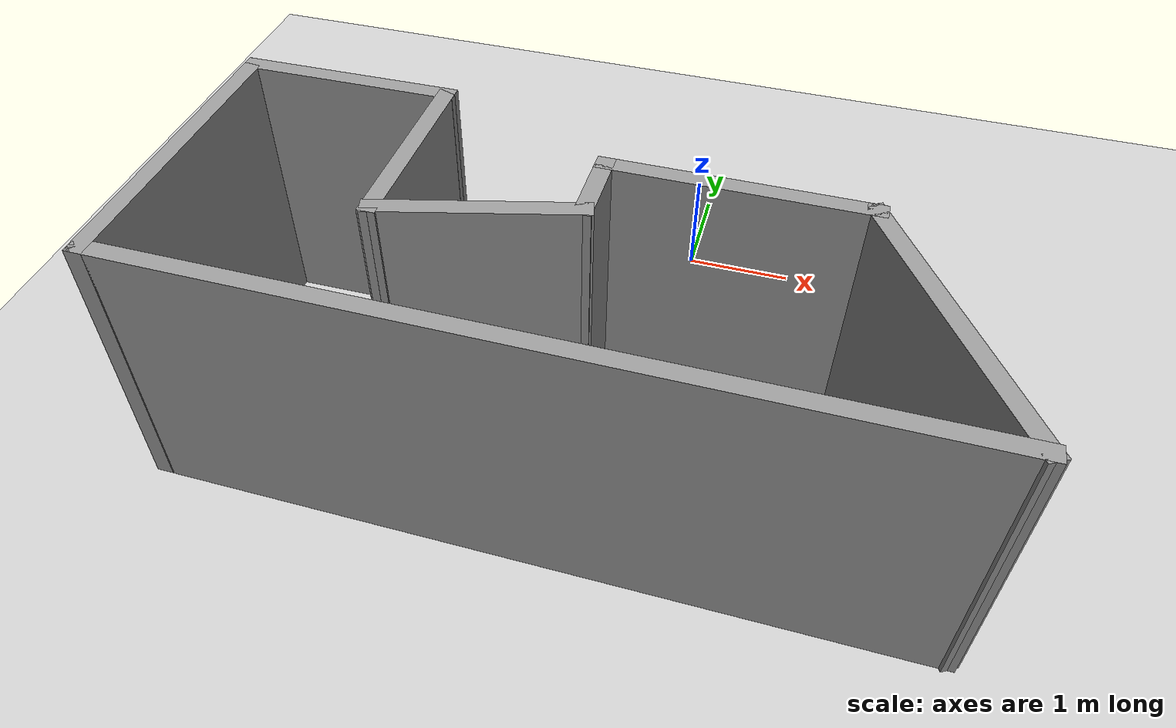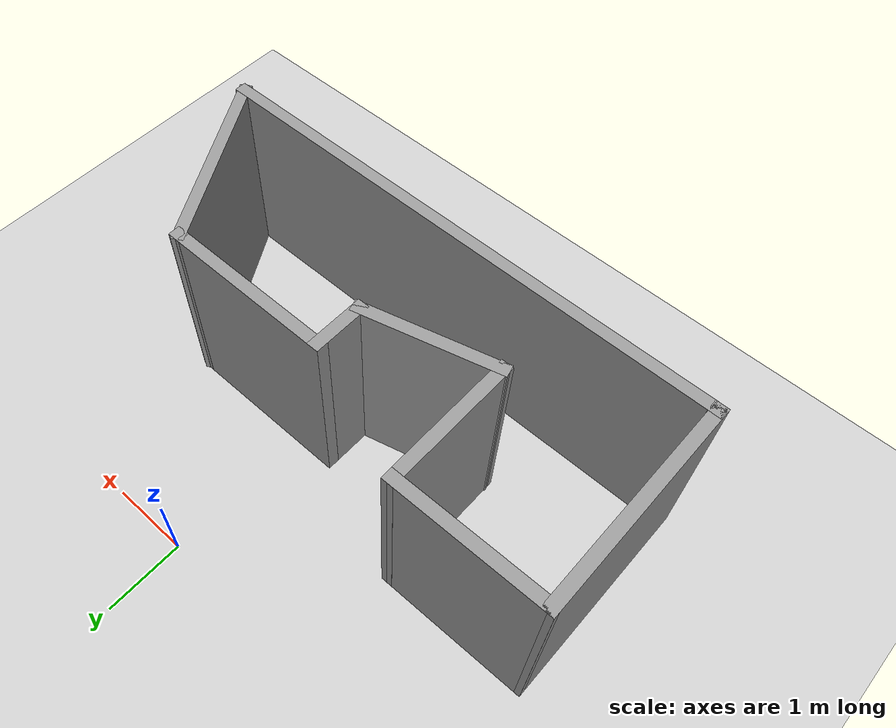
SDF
<sdf version='1.4'>
  <world name='default'>
    <!-- A global light source -->
    <include>
      <uri>model://sun</uri>
    </include>

    <!-- A ground plane -->
    <include>
      <uri>model://ground_plane</uri>
    </include>

    <physics type="ode">
      <real_time_update_rate>1000.0</real_time_update_rate>
      <max_step_size>0.001</max_step_size>
      <real_time_factor>1</real_time_factor>
      <ode>
        <solver>
          <type>quick</type>
          <iters>150</iters>
          <precon_iters>0</precon_iters>
          <sor>1.400000</sor>
          <use_dynamic_moi_rescaling>1</use_dynamic_moi_rescaling>
        </solver>
        <constraints>
          <cfm>0.00001</cfm>
          <erp>0.2</erp>
          <contact_max_correcting_vel>2000.000000</contact_max_correcting_vel>
          <contact_surface_layer>0.01000</contact_surface_layer>
        </constraints>
      </ode>
    </physics>

    <!-- Load world -->
    <include>
      <uri>model://new_home</uri>
    </include>

    <scene>
      <ambient>0.4 0.4 0.4 1</ambient>
      <background>0.7 0.7 0.7 1</background>
      <shadows>true</shadows>
    </scene>

    <gui fullscreen='0'>
      <camera name='user_camera'>
        <pose>0.8 0.0 12.0 0 1.5708 0</pose>
        <view_controller>orbit</view_controller>
      </camera>
    </gui>
  </world>
</sdf>

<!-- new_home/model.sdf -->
<sdf version='1.7'>
  <model name='new_home_workshop'>
    <pose>-0.52171 -2.05123 0 0 -0 0</pose>
    <link name='Wall_0'>
      <collision name='Wall_0_Collision'>
        <geometry>
          <box>
            <size>2.75 0.15 2.5</size>
          </box>
        </geometry>
        <pose>0 0 1.25 0 -0 0</pose>
      </collision>
      <visual name='Wall_0_Visual'>
        <pose>0 0 1.25 0 -0 0</pose>
        <geometry>
          <box>
            <size>2.75 0.15 2.5</size>
          </box>
        </geometry>
        <material>
          <script>
            <uri>file://media/materials/scripts/gazebo.material</uri>
            <name>Gazebo/Grey</name>
          </script>
          <ambient>1 1 1 1</ambient>
        </material>
        <meta>
          <layer>0</layer>
        </meta>
      </visual>
      <pose>-3.31829 -0.648774 0 0 -0 -1.5708</pose>
    </link>
    <link name='Wall_1'>
      <collision name='Wall_1_Collision'>
        <geometry>
          <box>
            <size>0.16 0.15 2.5</size>
          </box>
        </geometry>
        <pose>0 0 1.25 0 -0 0</pose>
      </collision>
      <visual name='Wall_1_Visual'>
        <pose>0 0 1.25 0 -0 0</pose>
        <geometry>
          <box>
            <size>0.16 0.15 2.5</size>
          </box>
        </geometry>
        <material>
          <script>
            <uri>file://media/materials/scripts/gazebo.material</uri>
            <name>Gazebo/Grey</name>
          </script>
          <ambient>1 1 1 1</ambient>
        </material>
        <meta>
          <layer>0</layer>
        </meta>
      </visual>
      <pose>-3.31329 -1.94877 0 0 -0 0</pose>
    </link>
    <link name='Wall_2'>
      <collision name='Wall_2_Collision'>
        <geometry>
          <box>
            <size>6.75 0.15 2.5</size>
          </box>
        </geometry>
        <pose>0 0 1.25 0 -0 0</pose>
      </collision>
      <visual name='Wall_2_Visual'>
        <pose>0 0 1.25 0 -0 0</pose>
        <geometry>
          <box>
            <size>6.75 0.15 2.5</size>
          </box>
        </geometry>
        <material>
          <script>
            <uri>file://media/materials/scripts/gazebo.material</uri>
            <name>Gazebo/Grey</name>
          </script>
          <ambient>1 1 1 1</ambient>
        </material>
        <meta>
          <layer>0</layer>
        </meta>
      </visual>
      <pose>-0.00829 -1.94877 0 0 -0 0</pose>
    </link>
    <link name='Wall_3'>
      <collision name='Wall_3_Collision'>
        <geometry>
          <box>
            <size>2.5 0.15 2.5</size>
          </box>
        </geometry>
        <pose>0 0 1.25 0 -0 0</pose>
      </collision>
      <visual name='Wall_3_Visual'>
        <pose>0 0 1.25 0 -0 0</pose>
        <geometry>
          <box>
            <size>2.5 0.15 2.5</size>
          </box>
        </geometry>
        <material>
          <script>
            <uri>file://media/materials/scripts/gazebo.material</uri>
            <name>Gazebo/Grey</name>
          </script>
          <ambient>1 1 1 1</ambient>
        </material>
        <meta>
          <layer>0</layer>
        </meta>
      </visual>
      <pose>2.70421 -0.931194 0 0 -0 2.0944</pose>
    </link>
    <link name='Wall_4'>
      <collision name='Wall_4_Collision'>
        <geometry>
          <box>
            <size>0.16 0.15 2.5</size>
          </box>
        </geometry>
        <pose>0 0 1.25 0 -0 0</pose>
      </collision>
      <visual name='Wall_4_Visual'>
        <pose>0 0 1.25 0 -0 0</pose>
        <geometry>
          <box>
            <size>0.16 0.15 2.5</size>
          </box>
        </geometry>
        <material>
          <script>
            <uri>file://media/materials/scripts/gazebo.material</uri>
            <name>Gazebo/Grey</name>
          </script>
          <ambient>1 1 1 1</ambient>
        </material>
        <meta>
          <layer>0</layer>
        </meta>
      </visual>
      <pose>2.12171 0.086386 0 0 -0 0</pose>
    </link>
    <link name='Wall_5'>
      <collision name='Wall_5_Collision'>
        <geometry>
          <box>
            <size>2.25 0.15 2.5</size>
          </box>
        </geometry>
        <pose>0 0 1.25 0 -0 0</pose>
      </collision>
      <visual name='Wall_5_Visual'>
        <pose>0 0 1.25 0 -0 0</pose>
        <geometry>
          <box>
            <size>2.25 0.15 2.5</size>
          </box>
        </geometry>
        <material>
          <script>
            <uri>file://media/materials/scripts/gazebo.material</uri>
            <name>Gazebo/Grey</name>
          </script>
          <ambient>1 1 1 1</ambient>
        </material>
        <meta>
          <layer>0</layer>
        </meta>
      </visual>
      <pose>1.07671 0.086386 0 0 -0 3.14159</pose>
    </link>
    <link name='Wall_6'>
      <collision name='Wall_6_Collision'>
        <geometry>
          <box>
            <size>0.75 0.15 2.5</size>
          </box>
        </geometry>
        <pose>0 0 1.25 0 -0 0</pose>
      </collision>
      <visual name='Wall_6_Visual'>
        <pose>0 0 1.25 0 -0 0</pose>
        <geometry>
          <box>
            <size>0.75 0.15 2.5</size>
          </box>
        </geometry>
        <material>
          <script>
            <uri>file://media/materials/scripts/gazebo.material</uri>
            <name>Gazebo/Grey</name>
          </script>
          <ambient>1 1 1 1</ambient>
        </material>
        <meta>
          <layer>0</layer>
        </meta>
      </visual>
      <pose>0.02671 -0.213614 0 0 -0 -1.5708</pose>
    </link>
    <link name='Wall_7'>
      <collision name='Wall_7_Collision'>
        <geometry>
          <box>
            <size>1.75 0.15 2.5</size>
          </box>
        </geometry>
        <pose>0 0 1.25 0 -0 0</pose>
      </collision>
      <visual name='Wall_7_Visual'>
        <pose>0 0 1.25 0 -0 0</pose>
        <geometry>
          <box>
            <size>1.75 0.15 2.5</size>
          </box>
        </geometry>
        <material>
          <script>
            <uri>file://media/materials/scripts/gazebo.material</uri>
            <name>Gazebo/Grey</name>
          </script>
          <ambient>1 1 1 1</ambient>
        </material>
        <meta>
          <layer>0</layer>
        </meta>
      </visual>
      <pose>-0.74603 -0.72067 0 0 -0 -2.87979</pose>
    </link>
    <link name='Wall_8'>
      <collision name='Wall_8_Collision'>
        <geometry>
          <box>
            <size>1.75 0.15 2.5</size>
          </box>
        </geometry>
        <pose>0 0 1.25 0 -0 0</pose>
      </collision>
      <visual name='Wall_8_Visual'>
        <pose>0 0 1.25 0 -0 0</pose>
        <geometry>
          <box>
            <size>1.75 0.15 2.5</size>
          </box>
        </geometry>
        <material>
          <script>
            <uri>file://media/materials/scripts/gazebo.material</uri>
            <name>Gazebo/Grey</name>
          </script>
          <ambient>1 1 1 1</ambient>
        </material>
        <meta>
          <layer>0</layer>
        </meta>
      </visual>
      <pose>-1.51877 -0.127725 0 0 -0 1.5708</pose>
    </link>
    <link name='Wall_9'>
      <collision name='Wall_9_Collision'>
        <geometry>
          <box>
            <size>1.94964 0.15 2.5</size>
          </box>
        </geometry>
        <pose>0 0 1.25 0 -0 0</pose>
      </collision>
      <visual name='Wall_9_Visual'>
        <pose>0 0 1.25 0 -0 0</pose>
        <geometry>
          <box>
            <size>1.94964 0.15 2.5</size>
          </box>
        </geometry>
        <material>
          <script>
            <uri>file://media/materials/scripts/gazebo.material</uri>
            <name>Gazebo/Grey</name>
          </script>
          <ambient>1 1 1 1</ambient>
        </material>
        <meta>
          <layer>0</layer>
        </meta>
      </visual>
      <pose>-2.41853 0.661751 0 0 -0 -3.1299</pose>
    </link>
    <static>1</static>
  </model>
</sdf>
